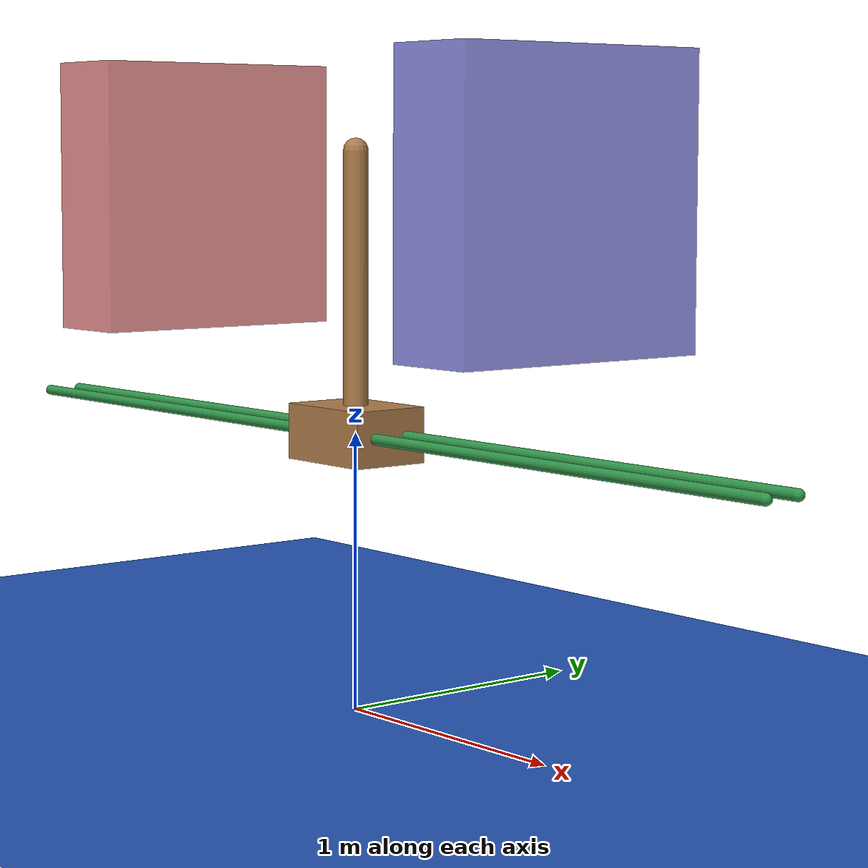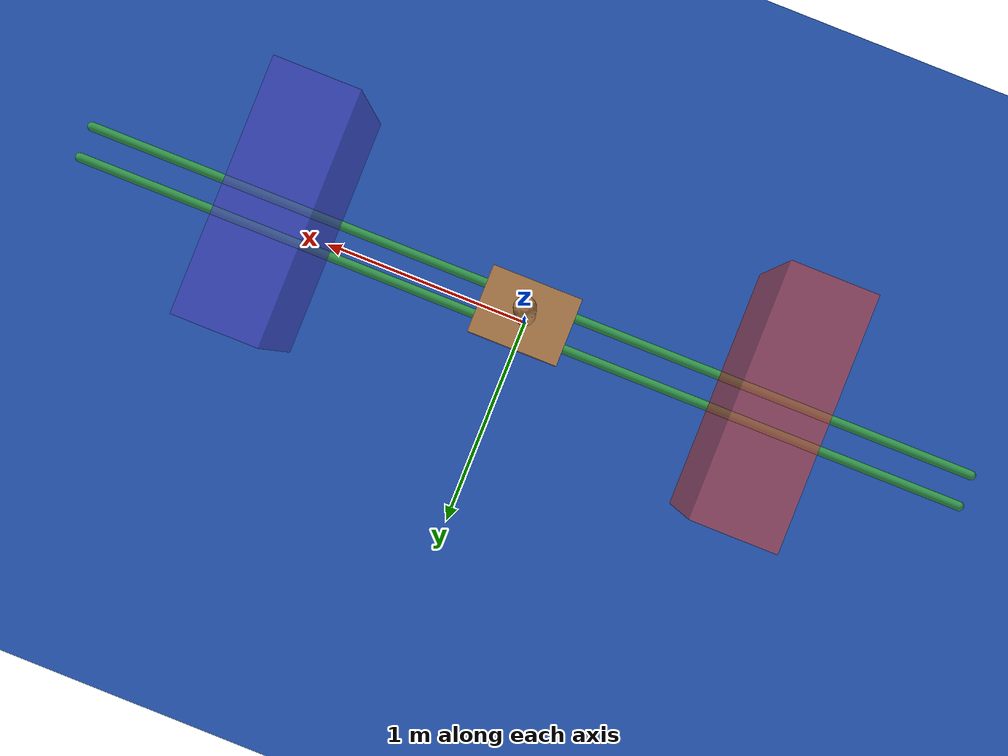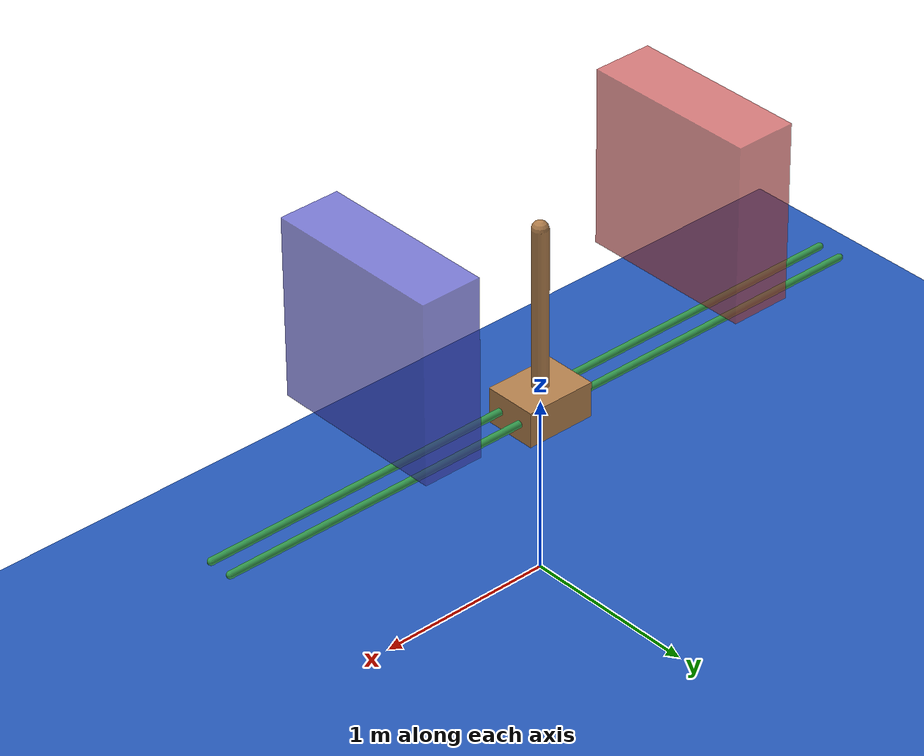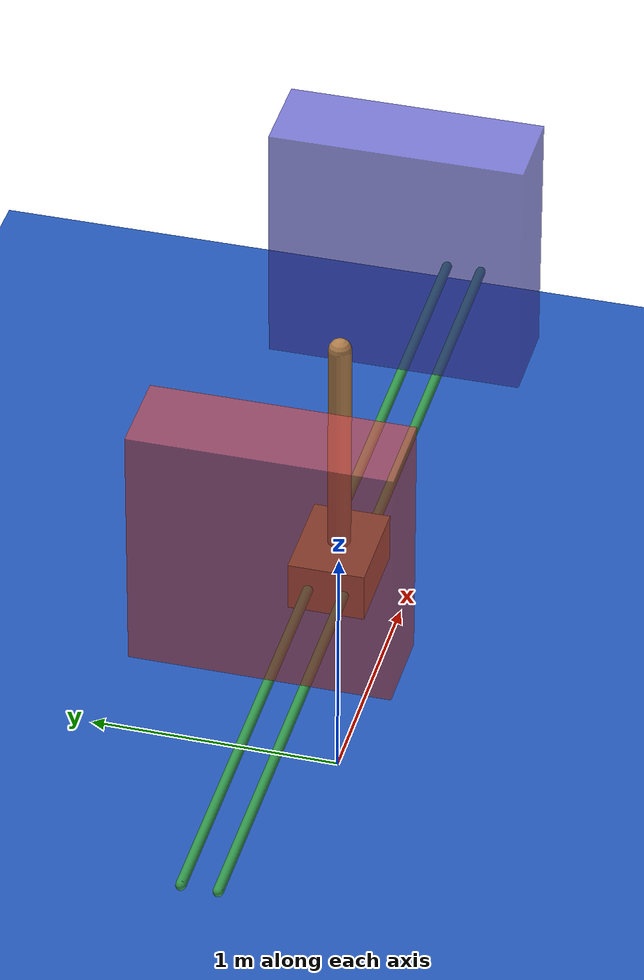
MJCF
<mujoco model="Cartpole Walls">
  <include file="../common.xml"/>

  <!-- bumped from 4K (cartpole default) since contacts are now active -->
  <size memory="1M"/>

  <!-- contacts enabled by default; walls collide with cart and pole -->
  <option timestep="0.001"/>

  <default>
    <default class="pole">
      <joint type="hinge" axis="0 1 0" damping="2e-6"/>
      <geom type="capsule" fromto="0 0 0 0 0 1" size="0.045" material="self" mass=".1"/>
    </default>
  </default>

  <custom>
    <!-- agent -->
    <numeric name="agent_planner" data="1" />
    <numeric name="agent_horizon" data="1.0" />
    <numeric name="agent_timestep" data="0.01" />
    <numeric name="sampling_sample_width" data="0.01" />
    <numeric name="sampling_control_width" data="0.015" />
    <numeric name="sampling_spline_points" data="10" />
    <numeric name="sampling_exploration" data="0.5" />
    <numeric name="gradient_spline_points" data="10" />
    <numeric name="residual_Goal" data="0.0 -1.5 1.5" />

    <!-- estimator -->
    <numeric name="estimator" data="0" />
    <numeric name="estimator_sensor_start" data="4" />
    <numeric name="estimator_number_sensor" data="2" />
    <numeric name="estimator_timestep" data="0.005" />
    <numeric name="batch_configuration_length" data="3" />
    <numeric name="batch_scale_prior" data="1.0e-3" />
  </custom>

  <worldbody>
    <light name="light" pos="0 0 6"/>
    <camera name="fixed" pos="0 -4 1" zaxis="0 -1 0"/>
    <camera name="lookatcart" mode="targetbody" target="cart" pos="0 -2 2"/>

    <!-- non-colliding scenery -->
    <geom name="floor" pos="0 0 -.05" size="4 4 .2" type="plane" material="blue_grid"
          contype="0" conaffinity="0"/>
    <geom name="rail1" type="capsule" pos="0  .07 1" zaxis="1 0 0" size="0.02 2"
          material="decoration" contype="0" conaffinity="0"/>
    <geom name="rail2" type="capsule" pos="0 -.07 1" zaxis="1 0 0" size="0.02 2"
          material="decoration" contype="0" conaffinity="0"/>

    <!-- Walls: proportionally scaled (~1.67x) from mj-ilqr/models/cartpole/cartpole_walls.xml
         to match MJPC's longer pole (1.0 vs 0.6). -->
    <body name="left_wall" pos="-1.0 0 1.83">
      <geom name="left_wall" type="box" size="0.17 0.5 0.5"
            rgba="0.8 0.3 0.3 0.7" contype="1" conaffinity="1"/>
    </body>
    <body name="right_wall" pos="1.0 0 1.83">
      <geom name="right_wall" type="box" size="0.17 0.5 0.5"
            rgba="0.3 0.3 0.8 0.7" contype="1" conaffinity="1"/>
    </body>

    <body name="cart" pos="0 0 1">
      <joint name="slider" type="slide" limited="true" axis="1 0 0"
             range="-1.8 1.8" solreflimit=".08 1" damping="1.0e-4"/>
      <geom name="cart" type="box" size="0.2 0.15 0.1" material="self" mass="1"
            contype="0" conaffinity="0"/>
      <body name="pole_1" childclass="pole">
        <joint name="hinge_1" damping="1.0e-4"/>
        <geom name="pole_1" contype="1" conaffinity="1"/>
        <site name="tip" pos="0 0 1"/>
      </body>
    </body>
  </worldbody>

  <actuator>
    <motor name="slide" joint="slider" gear="10" ctrllimited="true" ctrlrange="-1 1"/>
  </actuator>

  <sensor>
    <!-- cost terms (must stay in this order; residual values are matched by index) -->
    <user name="Vertical" dim="1" user="6 10.0 0 100.0 0.01"/>
    <user name="Centered" dim="1" user="6 10.0 0 100.0 0.1"/>
    <user name="Velocity" dim="1" user="0 0.1 0.0 1.0"/>
    <user name="Control"  dim="1" user="0 0.1 0.0 1.0"/>

    <!-- estimator -->
    <jointpos name="slider_pos" joint="slider"/>
    <jointpos name="hinge_pos"  joint="hinge_1"/>

    <!-- trace -->
    <framepos name="trace0" objtype="site" objname="tip"/>

    <!-- residual -->
    <framepos    name="position" objtype="site" objname="tip"/>
    <framelinvel name="velocity" objtype="site" objname="tip"/>
  </sensor>

  <keyframe>
    <key name="home" qpos="1 0"/>
  </keyframe>
</mujoco>

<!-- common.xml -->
<mujoco>

    <visual>
        <headlight ambient=".4 .4 .4" diffuse=".8 .8 .8" specular="0.1 0.1 0.1"/>
        <map znear=".01"/>
        <quality shadowsize="2048"/>
        <global elevation="-15"/>
    </visual>

    <asset>
        <texture name="blue_grid" type="2d" builtin="checker" rgb1=".02 .14 .44" rgb2=".27 .55 1" width="300" height="300" mark="edge" markrgb="1 1 1"/>
        <material name="blue_grid" texture="blue_grid" texrepeat="1 1" texuniform="true" reflectance=".2"/>

        <texture name="grey_grid" type="2d" builtin="checker" rgb1=".26 .26 .26" rgb2=".6 .6 .6" width="300" height="300" mark="edge" markrgb="1 1 1"/>
        <material name="grey_grid" texture="grey_grid" texrepeat="1 1" texuniform="true" reflectance=".2"/>
        <texture name="skybox" type="skybox" builtin="gradient" rgb1=".66 .79 1" rgb2=".9 .91 .93" width="800" height="800"/>

        <material name="self" rgba=".7 .5 .3 1"/>
        <material name="self_default" rgba=".7 .5 .3 1"/>
        <material name="self_highlight" rgba="0 .5 .3 1"/>
        <material name="effector" rgba=".7 .4 .2 1"/>
        <material name="effector_default" rgba=".7 .4 .2 1"/>
        <material name="effector_highlight" rgba="0 .5 .3 1"/>
        <material name="decoration" rgba=".2 .6 .3 1"/>
        <material name="eye" rgba="0 .2 1 1"/>
        <material name="target" rgba=".6 .3 .3 1"/>
        <material name="target_default" rgba=".6 .3 .3 1"/>
        <material name="target_highlight" rgba=".6 .3 .3 .4"/>
        <material name="site" rgba=".5 .5 .5 .3"/>
    </asset>

    <size memory="1M"/>

    <statistic extent="0.4" center="0.3 0.1 0"/>

    <visual>
        <quality shadowsize="8192"/>
        <global azimuth="180" elevation="-30"/>
    </visual>

    <default>
        <geom friction="1.0"/>
    </default>

    <compiler angle="radian" autolimits="true"/>

    <asset>
        <mesh name="apple" file="../../shared_assets/apple/apple.obj" />
        <mesh name="apple_contact0" file="../../shared_assets/apple/contact0.stl"  />
        <mesh name="apple_contact1" file="../../shared_assets/apple/contact1.stl"  />

        <mesh name="doorknob" file="../../shared_assets/doorknob/doorknob.obj" />

        <mesh name="flashlight" file="../../shared_assets/flashlight/flashlight.obj" />
        <mesh name="flashlight_contact0" file="../../shared_assets/flashlight/contact0.stl"  />
        <mesh name="flashlight_contact1" file="../../shared_assets/flashlight/contact1.stl"  />

        <mesh name="hammer" file="../../shared_assets/hammer/hammer.obj" />
        <mesh name="hammer_contact0" file="../../shared_assets/hammer/contact0.stl"  />
        <mesh name="hammer_contact1" file="../../shared_assets/hammer/contact1.stl"  />

        <mesh name="phone" file="../../shared_assets/phone/phone.obj" />
        <mesh name="phone_contact0" file="../../shared_assets/phone/contact0.stl"  />
        <mesh name="phone_contact1" file="../../shared_assets/phone/contact1.stl"  />
        <mesh name="phone_contact2" file="../../shared_assets/phone/contact2.stl"  />

        <mesh name="stapler" file="../../shared_assets/stapler/stapler.obj" />
        <mesh name="stapler_contact0" file="../../shared_assets/stapler/contact0.stl"  />
        <mesh name="stapler_contact1" file="../../shared_assets/stapler/contact1.stl"  />
        <mesh name="stapler_contact2" file="../../shared_assets/stapler/contact2.stl"  />
        <mesh name="stapler_contact3" file="../../shared_assets/stapler/contact3.stl"  />
        <mesh name="stapler_contact4" file="../../shared_assets/stapler/contact4.stl"  />

        <mesh name="waterbottle" file="../../shared_assets/waterbottle/waterbottle.obj" />
        <mesh name="waterbottle_contact0" file="../../shared_assets/waterbottle/contact0.stl"  />
        <mesh name="waterbottle_contact1" file="../../shared_assets/waterbottle/contact1.stl"  />
    </asset>

</mujoco>
